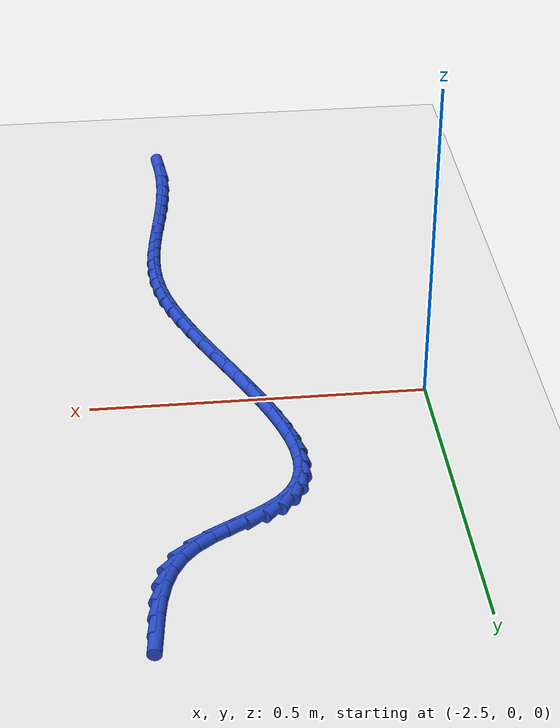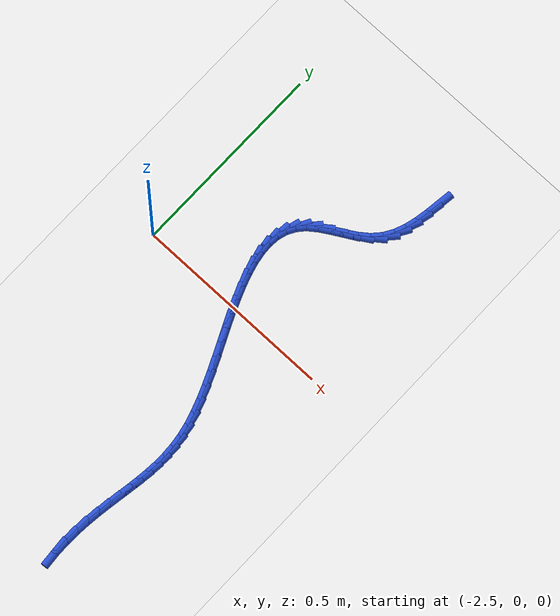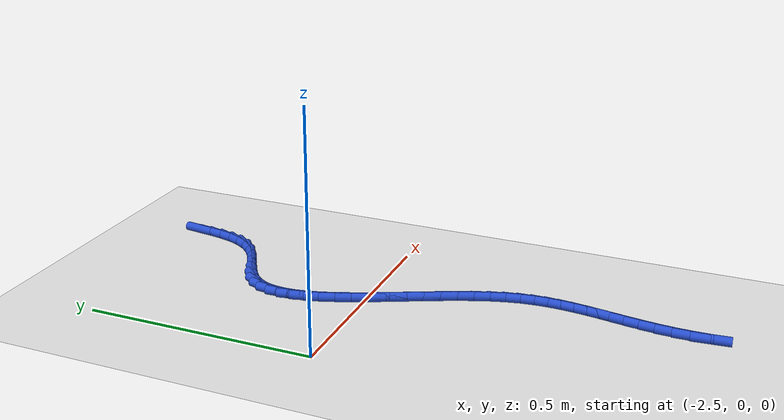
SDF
<sdf version="1.6">
 <world name="default">
  <model name="ground_plane">
   <static>1</static>
   <link name="link">
    <collision name="collision">
     <geometry><plane><normal>0 0 1</normal><size>100 100</size></plane></geometry>
     <surface><friction><ode><mu>100</mu><mu2>50</mu2></ode></friction></surface>
    </collision>
    <visual name="visual">
     <cast_shadows>0</cast_shadows>
     <geometry><plane><normal>0 0 1</normal><size>100 100</size></plane></geometry>
     <material>
      <script><uri>file://media/materials/scripts/gazebo.material</uri><name>Gazebo/WhiteGlow</name></script>
     </material>
    </visual>
   </link>
  </model>
  <model name="line">
   <link name="link_105">
    <pose>-2.065702570351997 0.5013204709973845 0.01 0 1.57 1.4412149942298285</pose>
    <collision name="collision">
     <geometry><cylinder><radius>0.01</radius><length>0.08</length></cylinder></geometry>
    </collision>
    <visual name="visual">
     <material>
      <script><name>Gazebo/Blue</name><uri>file://media/materials/scripts/gazebo.material</uri></script>
     </material>
     <geometry><cylinder><radius>0.01</radius><length>0.08</length></cylinder></geometry>
    </visual>
   </link>
   <link name="link_106">
    <pose>-2.0697925151127525 0.46993456722490806 0.01 0 1.57 1.3945858826142912</pose>
    <collision name="collision">
     <geometry><cylinder><radius>0.01</radius><length>0.08</length></cylinder></geometry>
    </collision>
    <visual name="visual">
     <material>
      <script><name>Gazebo/Blue</name><uri>file://media/materials/scripts/gazebo.material</uri></script>
     </material>
     <geometry><cylinder><radius>0.01</radius><length>0.08</length></cylinder></geometry>
    </visual>
   </link>
   <link name="link_107">
    <pose>-2.075212986828049 0.4394922562499411 0.01 0 1.57 1.3131686919333498</pose>
    <collision name="collision">
     <geometry><cylinder><radius>0.01</radius><length>0.08</length></cylinder></geometry>
    </collision>
    <visual name="visual">
     <material>
      <script><name>Gazebo/Blue</name><uri>file://media/materials/scripts/gazebo.material</uri></script>
     </material>
     <geometry><cylinder><radius>0.01</radius><length>0.08</length></cylinder></geometry>
    </visual>
   </link>
   <link name="link_108">
    <pose>-2.0828451487524258 0.41052581372078084 0.01 0 1.57 1.1921557762971915</pose>
    <collision name="collision">
     <geometry><cylinder><radius>0.01</radius><length>0.08</length></cylinder></geometry>
    </collision>
    <visual name="visual">
     <material>
      <script><name>Gazebo/Blue</name><uri>file://media/materials/scripts/gazebo.material</uri></script>
     </material>
     <geometry><cylinder><radius>0.01</radius><length>0.08</length></cylinder></geometry>
    </visual>
   </link>
   <link name="link_109">
    <pose>-2.093570164140423 0.38356751528572336 0.01 0 1.57 1.0289234936867027</pose>
    <collision name="collision">
     <geometry><cylinder><radius>0.01</radius><length>0.08</length></cylinder></geometry>
    </collision>
    <visual name="visual">
     <material>
      <script><name>Gazebo/Blue</name><uri>file://media/materials/scripts/gazebo.material</uri></script>
     </material>
     <geometry><cylinder><radius>0.01</radius><length>0.08</length></cylinder></geometry>
    </visual>
   </link>
   <link name="link_110">
    <pose>-2.108269196246581 0.35914963659306487 0.01 0 1.57 0.8298876304992711</pose>
    <collision name="collision">
     <geometry><cylinder><radius>0.01</radius><length>0.08</length></cylinder></geometry>
    </collision>
    <visual name="visual">
     <material>
      <script><name>Gazebo/Blue</name><uri>file://media/materials/scripts/gazebo.material</uri></script>
     </material>
     <geometry><cylinder><radius>0.01</radius><length>0.08</length></cylinder></geometry>
    </visual>
   </link>
   <link name="link_111">
    <pose>-2.1278043270779246 0.33779410057529485 0.01 0 1.57 0.6509892045589114</pose>
    <collision name="collision">
     <geometry><cylinder><radius>0.01</radius><length>0.08</length></cylinder></geometry>
    </collision>
    <visual name="visual">
     <material>
      <script><name>Gazebo/Blue</name><uri>file://media/materials/scripts/gazebo.material</uri></script>
     </material>
     <geometry><cylinder><radius>0.01</radius><length>0.08</length></cylinder></geometry>
    </visual>
   </link>
   <link name="link_112">
    <pose>-2.15192547832248 0.3194194168027968 0.01 0 1.57 0.5499695895755421</pose>
    <collision name="collision">
     <geometry><cylinder><radius>0.01</radius><length>0.08</length></cylinder></geometry>
    </collision>
    <visual name="visual">
     <material>
      <script><name>Gazebo/Blue</name><uri>file://media/materials/scripts/gazebo.material</uri></script>
     </material>
     <geometry><cylinder><radius>0.01</radius><length>0.08</length></cylinder></geometry>
    </visual>
   </link>
   <link name="link_113">
    <pose>-2.17867727543734 0.3030188698451055 0.01 0 1.57 0.5169753958675496</pose>
    <collision name="collision">
     <geometry><cylinder><radius>0.01</radius><length>0.08</length></cylinder></geometry>
    </collision>
    <visual name="visual">
     <material>
      <script><name>Gazebo/Blue</name><uri>file://media/materials/scripts/gazebo.material</uri></script>
     </material>
     <geometry><cylinder><radius>0.01</radius><length>0.08</length></cylinder></geometry>
    </visual>
   </link>
   <link name="link_114">
    <pose>-2.2059597988403796 0.2875073199595408 0.01 0 1.57 0.5483792309441852</pose>
    <collision name="collision">
     <geometry><cylinder><radius>0.01</radius><length>0.08</length></cylinder></geometry>
    </collision>
    <visual name="visual">
     <material>
      <script><name>Gazebo/Blue</name><uri>file://media/materials/scripts/gazebo.material</uri></script>
     </material>
     <geometry><cylinder><radius>0.01</radius><length>0.08</length></cylinder></geometry>
    </visual>
   </link>
   <link name="link_115">
    <pose>-2.2316731289494736 0.2717996274034224 0.01 0 1.57 0.6566034787042263</pose>
    <collision name="collision">
     <geometry><cylinder><radius>0.01</radius><length>0.08</length></cylinder></geometry>
    </collision>
    <visual name="visual">
     <material>
      <script><name>Gazebo/Blue</name><uri>file://media/materials/scripts/gazebo.material</uri></script>
     </material>
     <geometry><cylinder><radius>0.01</radius><length>0.08</length></cylinder></geometry>
    </visual>
   </link>
   <link name="link_116">
    <pose>-2.253717352253188 0.25481065542781883 0.01 0 1.57 0.8520656086595076</pose>
    <collision name="collision">
     <geometry><cylinder><radius>0.01</radius><length>0.08</length></cylinder></geometry>
    </collision>
    <visual name="visual">
     <material>
      <script><name>Gazebo/Blue</name><uri>file://media/materials/scripts/gazebo.material</uri></script>
     </material>
     <geometry><cylinder><radius>0.01</radius><length>0.08</length></cylinder></geometry>
    </visual>
   </link>
   <link name="link_117">
    <pose>-2.270451798575084 0.23568174204270767 0.01 0 1.57 1.075721189589508</pose>
    <collision name="collision">
     <geometry><cylinder><radius>0.01</radius><length>0.08</length></cylinder></geometry>
    </collision>
    <visual name="visual">
     <material>
      <script><name>Gazebo/Blue</name><uri>file://media/materials/scripts/gazebo.material</uri></script>
     </material>
     <geometry><cylinder><radius>0.01</radius><length>0.08</length></cylinder></geometry>
    </visual>
   </link>
   <link name="link_118">
    <pose>-2.281944131025109 0.2143966857570966 0.01 0 1.57 1.2897615467369279</pose>
    <collision name="collision">
     <geometry><cylinder><radius>0.01</radius><length>0.08</length></cylinder></geometry>
    </collision>
    <visual name="visual">
     <material>
      <script><name>Gazebo/Blue</name><uri>file://media/materials/scripts/gazebo.material</uri></script>
     </material>
     <geometry><cylinder><radius>0.01</radius><length>0.08</length></cylinder></geometry>
    </visual>
   </link>
   <link name="link_119">
    <pose>-2.2886591587662015 0.19113513671190782 0.01 0 1.57 1.4752111498239509</pose>
    <collision name="collision">
     <geometry><cylinder><radius>0.01</radius><length>0.08</length></cylinder></geometry>
    </collision>
    <visual name="visual">
     <material>
      <script><name>Gazebo/Blue</name><uri>file://media/materials/scripts/gazebo.material</uri></script>
     </material>
     <geometry><cylinder><radius>0.01</radius><length>0.08</length></cylinder></geometry>
    </visual>
   </link>
   <link name="link_120">
    <pose>-2.291061690961303 0.1660767450480624 0.01 0 1.57 -1.5166740685143374</pose>
    <collision name="collision">
     <geometry><cylinder><radius>0.01</radius><length>0.08</length></cylinder></geometry>
    </collision>
    <visual name="visual">
     <material>
      <script><name>Gazebo/Blue</name><uri>file://media/materials/scripts/gazebo.material</uri></script>
     </material>
     <geometry><cylinder><radius>0.01</radius><length>0.08</length></cylinder></geometry>
    </visual>
   </link>
   <link name="link_121">
    <pose>-2.289616536773352 0.1394011609064818 0.01 0 1.57 -1.400719571080799</pose>
    <collision name="collision">
     <geometry><cylinder><radius>0.01</radius><length>0.08</length></cylinder></geometry>
    </collision>
    <visual name="visual">
     <material>
      <script><name>Gazebo/Blue</name><uri>file://media/materials/scripts/gazebo.material</uri></script>
     </material>
     <geometry><cylinder><radius>0.01</radius><length>0.08</length></cylinder></geometry>
    </visual>
   </link>
   <link name="link_122">
    <pose>-2.2847885053652877 0.11128803442808746 0.01 0 1.57 -1.3129350661341743</pose>
    <collision name="collision">
     <geometry><cylinder><radius>0.01</radius><length>0.08</length></cylinder></geometry>
    </collision>
    <visual name="visual">
     <material>
      <script><name>Gazebo/Blue</name><uri>file://media/materials/scripts/gazebo.material</uri></script>
     </material>
     <geometry><cylinder><radius>0.01</radius><length>0.08</length></cylinder></geometry>
    </visual>
   </link>
   <link name="link_123">
    <pose>-2.2770424059000502 0.08191701575380039 0.01 0 1.57 -1.2475803028456793</pose>
    <collision name="collision">
     <geometry><cylinder><radius>0.01</radius><length>0.08</length></cylinder></geometry>
    </collision>
    <visual name="visual">
     <material>
      <script><name>Gazebo/Blue</name><uri>file://media/materials/scripts/gazebo.material</uri></script>
     </material>
     <geometry><cylinder><radius>0.01</radius><length>0.08</length></cylinder></geometry>
    </visual>
   </link>
   <link name="link_124">
    <pose>-2.2668430475405796 0.0514677550245429 0.01 0 1.57 -1.1999888201246087</pose>
    <collision name="collision">
     <geometry><cylinder><radius>0.01</radius><length>0.08</length></cylinder></geometry>
    </collision>
    <visual name="visual">
     <material>
      <script><name>Gazebo/Blue</name><uri>file://media/materials/scripts/gazebo.material</uri></script>
     </material>
     <geometry><cylinder><radius>0.01</radius><length>0.08</length></cylinder></geometry>
    </visual>
   </link>
   <link name="link_125">
    <pose>-2.2546552394498156 0.020119902381236034 0.01 0 1.57 -1.1667337611564932</pose>
    <collision name="collision">
     <geometry><cylinder><radius>0.01</radius><length>0.08</length></cylinder></geometry>
    </collision>
    <visual name="visual">
     <material>
      <script><name>Gazebo/Blue</name><uri>file://media/materials/scripts/gazebo.material</uri></script>
     </material>
     <geometry><cylinder><radius>0.01</radius><length>0.08</length></cylinder></geometry>
    </visual>
   </link>
   <link name="link_126">
    <pose>-2.2409437907906966 -0.01194689203519925 0.01 0 1.57 -1.145457447732364</pose>
    <collision name="collision">
     <geometry><cylinder><radius>0.01</radius><length>0.08</length></cylinder></geometry>
    </collision>
    <visual name="visual">
     <material>
      <script><name>Gazebo/Blue</name><uri>file://media/materials/scripts/gazebo.material</uri></script>
     </material>
     <geometry><cylinder><radius>0.01</radius><length>0.08</length></cylinder></geometry>
    </visual>
   </link>
   <link name="link_127">
    <pose>-2.2261735107261638 -0.04455297808384059 0.01 0 1.57 -1.1346600979825872</pose>
    <collision name="collision">
     <geometry><cylinder><radius>0.01</radius><length>0.08</length></cylinder></geometry>
    </collision>
    <visual name="visual">
     <material>
      <script><name>Gazebo/Blue</name><uri>file://media/materials/scripts/gazebo.material</uri></script>
     </material>
     <geometry><cylinder><radius>0.01</radius><length>0.08</length></cylinder></geometry>
    </visual>
   </link>
   <link name="link_128">
    <pose>-2.2108092084191555 -0.07751870562376695 0.01 0 1.57 -1.1335372763068974</pose>
    <collision name="collision">
     <geometry><cylinder><radius>0.01</radius><length>0.08</length></cylinder></geometry>
    </collision>
    <visual name="visual">
     <material>
      <script><name>Gazebo/Blue</name><uri>file://media/materials/scripts/gazebo.material</uri></script>
     </material>
     <geometry><cylinder><radius>0.01</radius><length>0.08</length></cylinder></geometry>
    </visual>
   </link>
   <link name="link_129">
    <pose>-2.195315693032612 -0.11066442451405695 0.01 0 1.57 -1.1418826878063217</pose>
    <collision name="collision">
     <geometry><cylinder><radius>0.01</radius><length>0.08</length></cylinder></geometry>
    </collision>
    <visual name="visual">
     <material>
      <script><name>Gazebo/Blue</name><uri>file://media/materials/scripts/gazebo.material</uri></script>
     </material>
     <geometry><cylinder><radius>0.01</radius><length>0.08</length></cylinder></geometry>
    </visual>
   </link>
   <link name="link_130">
    <pose>-2.180157773729473 -0.14381048461378906 0.01 0 1.57 -1.1600532120919762</pose>
    <collision name="collision">
     <geometry><cylinder><radius>0.01</radius><length>0.08</length></cylinder></geometry>
    </collision>
    <visual name="visual">
     <material>
      <script><name>Gazebo/Blue</name><uri>file://media/materials/scripts/gazebo.material</uri></script>
     </material>
     <geometry><cylinder><radius>0.01</radius><length>0.08</length></cylinder></geometry>
    </visual>
   </link>
   <link name="link_131">
    <pose>-2.165800259672678 -0.1767772357820419 0.01 0 1.57 -1.1889903551304253</pose>
    <collision name="collision">
     <geometry><cylinder><radius>0.01</radius><length>0.08</length></cylinder></geometry>
    </collision>
    <visual name="visual">
     <material>
      <script><name>Gazebo/Blue</name><uri>file://media/materials/scripts/gazebo.material</uri></script>
     </material>
     <geometry><cylinder><radius>0.01</radius><length>0.08</length></cylinder></geometry>
    </visual>
   </link>
   <link name="link_132">
    <pose>-2.1527079600251655 -0.20938502787789404 0.01 0 1.57 -1.2302913606578663</pose>
    <collision name="collision">
     <geometry><cylinder><radius>0.01</radius><length>0.08</length></cylinder></geometry>
    </collision>
    <visual name="visual">
     <material>
      <script><name>Gazebo/Blue</name><uri>file://media/materials/scripts/gazebo.material</uri></script>
     </material>
     <geometry><cylinder><radius>0.01</radius><length>0.08</length></cylinder></geometry>
    </visual>
   </link>
   <link name="link_133">
    <pose>-2.141345683949877 -0.24145421076042486 0.01 0 1.57 -1.2863137785438439</pose>
    <collision name="collision">
     <geometry><cylinder><radius>0.01</radius><length>0.08</length></cylinder></geometry>
    </collision>
    <visual name="visual">
     <material>
      <script><name>Gazebo/Blue</name><uri>file://media/materials/scripts/gazebo.material</uri></script>
     </material>
     <geometry><cylinder><radius>0.01</radius><length>0.08</length></cylinder></geometry>
    </visual>
   </link>
   <link name="link_134">
    <pose>-2.1321782406097514 -0.2728051342887111 0.01 0 1.57 -1.3599064335407829</pose>
    <collision name="collision">
     <geometry><cylinder><radius>0.01</radius><length>0.08</length></cylinder></geometry>
    </collision>
    <visual name="visual">
     <material>
      <script><name>Gazebo/Blue</name><uri>file://media/materials/scripts/gazebo.material</uri></script>
     </material>
     <geometry><cylinder><radius>0.01</radius><length>0.08</length></cylinder></geometry>
    </visual>
   </link>
   <link name="link_135">
    <pose>-2.1256578354092297 -0.30326393557796033 0.01 0 1.57 -1.442997834502448</pose>
    <collision name="collision">
     <geometry><cylinder><radius>0.01</radius><length>0.08</length></cylinder></geometry>
    </collision>
    <visual name="visual">
     <material>
      <script><name>Gazebo/Blue</name><uri>file://media/materials/scripts/gazebo.material</uri></script>
     </material>
     <geometry><cylinder><radius>0.01</radius><length>0.08</length></cylinder></geometry>
    </visual>
   </link>
   <link name="link_136">
    <pose>-2.1218585848912266 -0.3328303584560938 0.01 0 1.57 -1.5210087646637647</pose>
    <collision name="collision">
     <geometry><cylinder><radius>0.01</radius><length>0.08</length></cylinder></geometry>
    </collision>
    <visual name="visual">
     <material>
      <script><name>Gazebo/Blue</name><uri>file://media/materials/scripts/gazebo.material</uri></script>
     </material>
     <geometry><cylinder><radius>0.01</radius><length>0.08</length></cylinder></geometry>
    </visual>
   </link>
   <link name="link_137">
    <pose>-2.1204198592091674 -0.3617037688484391 0.01 0 1.57 1.551878194161528</pose>
    <collision name="collision">
     <geometry><cylinder><radius>0.01</radius><length>0.08</length></cylinder></geometry>
    </collision>
    <visual name="visual">
     <material>
      <script><name>Gazebo/Blue</name><uri>file://media/materials/scripts/gazebo.material</uri></script>
     </material>
     <geometry><cylinder><radius>0.01</radius><length>0.08</length></cylinder></geometry>
    </visual>
   </link>
   <link name="link_138">
    <pose>-2.1209570239485576 -0.390094554835565 0.01 0 1.57 1.4952458576327794</pose>
    <collision name="collision">
     <geometry><cylinder><radius>0.01</radius><length>0.08</length></cylinder></geometry>
    </collision>
    <visual name="visual">
     <material>
      <script><name>Gazebo/Blue</name><uri>file://media/materials/scripts/gazebo.material</uri></script>
     </material>
     <geometry><cylinder><radius>0.01</radius><length>0.08</length></cylinder></geometry>
    </visual>
   </link>
   <link name="link_139">
    <pose>-2.123085444694903 -0.4182131044980406 0.01 0 1.57 1.452483538196961</pose>
    <collision name="collision">
     <geometry><cylinder><radius>0.01</radius><length>0.08</length></cylinder></geometry>
    </collision>
    <visual name="visual">
     <material>
      <script><name>Gazebo/Blue</name><uri>file://media/materials/scripts/gazebo.material</uri></script>
     </material>
     <geometry><cylinder><radius>0.01</radius><length>0.08</length></cylinder></geometry>
    </visual>
   </link>
   <link name="link_140">
    <pose>-2.1264204870337085 -0.44626980591643556 0.01 0 1.57 1.4244648110861844</pose>
    <collision name="collision">
     <geometry><cylinder><radius>0.01</radius><length>0.08</length></cylinder></geometry>
    </collision>
    <visual name="visual">
     <material>
      <script><name>Gazebo/Blue</name><uri>file://media/materials/scripts/gazebo.material</uri></script>
     </material>
     <geometry><cylinder><radius>0.01</radius><length>0.08</length></cylinder></geometry>
    </visual>
   </link>
   <link name="link_141">
    <pose>-2.130577516550479 -0.4744750471713173 0.01 0 1.57 1.4113179994942846</pose>
    <collision name="collision">
     <geometry><cylinder><radius>0.01</radius><length>0.08</length></cylinder></geometry>
    </collision>
    <visual name="visual">
     <material>
      <script><name>Gazebo/Blue</name><uri>file://media/materials/scripts/gazebo.material</uri></script>
     </material>
     <geometry><cylinder><radius>0.01</radius><length>0.08</length></cylinder></geometry>
    </visual>
   </link>
   <link name="link_142">
    <pose>-2.1351718988307207 -0.5030392163432557 0.01 0 1.57 1.4126182539742427</pose>
    <collision name="collision">
     <geometry><cylinder><radius>0.01</radius><length>0.08</length></cylinder></geometry>
    </collision>
    <visual name="visual">
     <material>
      <script><name>Gazebo/Blue</name><uri>file://media/materials/scripts/gazebo.material</uri></script>
     </material>
     <geometry><cylinder><radius>0.01</radius><length>0.08</length></cylinder></geometry>
    </visual>
   </link>
   <link name="link_143">
    <pose>-2.1398189994599384 -0.5321727015128195 0.01 0 1.57 1.4275277597188096</pose>
    <collision name="collision">
     <geometry><cylinder><radius>0.01</radius><length>0.08</length></cylinder></geometry>
    </collision>
    <visual name="visual">
     <material>
      <script><name>Gazebo/Blue</name><uri>file://media/materials/scripts/gazebo.material</uri></script>
     </material>
     <geometry><cylinder><radius>0.01</radius><length>0.08</length></cylinder></geometry>
    </visual>
   </link>
   <link name="link_144">
    <pose>-2.144134184023636 -0.5620858907605778 0.01 0 1.57 1.4548701556718668</pose>
    <collision name="collision">
     <geometry><cylinder><radius>0.01</radius><length>0.08</length></cylinder></geometry>
    </collision>
    <visual name="visual">
     <material>
      <script><name>Gazebo/Blue</name><uri>file://media/materials/scripts/gazebo.material</uri></script>
     </material>
     <geometry><cylinder><radius>0.01</radius><length>0.08</length></cylinder></geometry>
    </visual>
   </link>
   <link name="link_145">
    <pose>-2.147732818107321 -0.5929891721670996 0.01 0 1.57 1.4931596483894958</pose>
    <collision name="collision">
     <geometry><cylinder><radius>0.01</radius><length>0.08</length></cylinder></geometry>
    </collision>
    <visual name="visual">
     <material>
      <script><name>Gazebo/Blue</name><uri>file://media/materials/scripts/gazebo.material</uri></script>
     </material>
     <geometry><cylinder><radius>0.01</radius><length>0.08</length></cylinder></geometry>
    </visual>
   </link>
   <link name="link_146">
    <pose>-2.150230267296497 -0.6250929338129538 0.01 0 1.57 1.5406207643279073</pose>
    <collision name="collision">
     <geometry><cylinder><radius>0.01</radius><length>0.08</length></cylinder></geometry>
    </collision>
    <visual name="visual">
     <material>
      <script><name>Gazebo/Blue</name><uri>file://media/materials/scripts/gazebo.material</uri></script>
     </material>
     <geometry><cylinder><radius>0.01</radius><length>0.08</length></cylinder></geometry>
    </visual>
   </link>
   <link name="link_147">
    <pose>-2.15124189717667 -0.6586075637787095 0.01 0 1.57 -1.5463582676833418</pose>
    <collision name="collision">
     <geometry><cylinder><radius>0.01</radius><length>0.08</length></cylinder></geometry>
    </collision>
    <visual name="visual">
     <material>
      <script><name>Gazebo/Blue</name><uri>file://media/materials/scripts/gazebo.material</uri></script>
     </material>
     <geometry><cylinder><radius>0.01</radius><length>0.08</length></cylinder></geometry>
    </visual>
   </link>
   <link name="link_148">
    <pose>-2.1503830733333453 -0.6937434501449355 0.01 0 1.57 -1.4877012919277157</pose>
    <collision name="collision">
     <geometry><cylinder><radius>0.01</radius><length>0.08</length></cylinder></geometry>
    </collision>
    <visual name="visual">
     <material>
      <script><name>Gazebo/Blue</name><uri>file://media/materials/scripts/gazebo.material</uri></script>
     </material>
     <geometry><cylinder><radius>0.01</radius><length>0.08</length></cylinder></geometry>
    </visual>
   </link>
  </model>
 </world>
</sdf>
